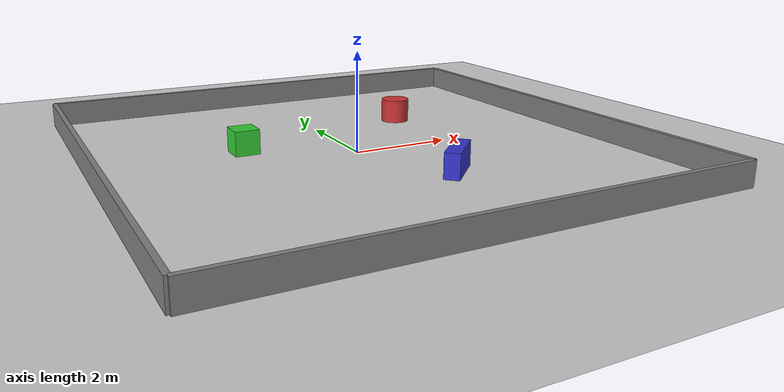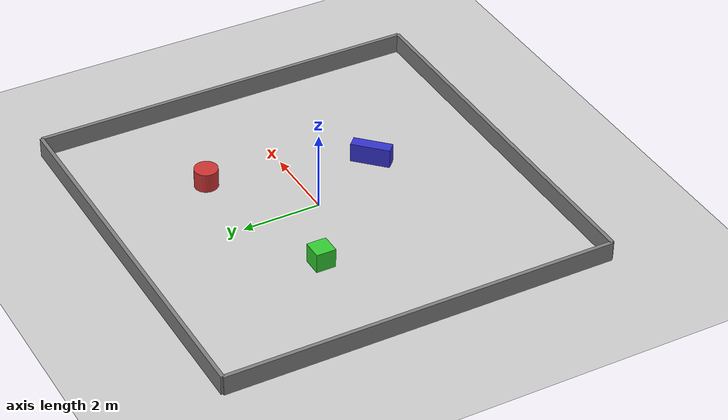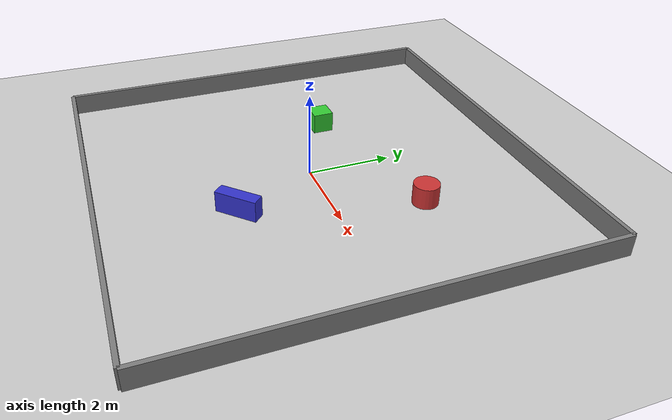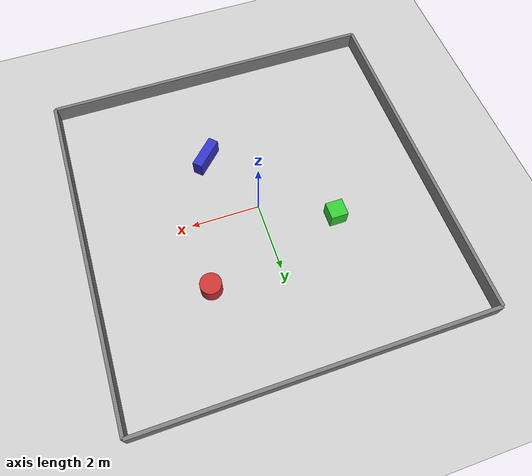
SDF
<?xml version="1.0" ?>
<sdf version="1.6">
  <world name="rover2_world">

    <!-- Physics settings -->
    <physics type="ode">
      <real_time_update_rate>1000.0</real_time_update_rate>
      <max_step_size>0.001</max_step_size>
      <real_time_factor>1</real_time_factor>
      <ode>
        <solver>
          <type>quick</type>
          <iters>150</iters>
          <precon_iters>0</precon_iters>
          <sor>1.400000</sor>
          <use_dynamic_moi_rescaling>1</use_dynamic_moi_rescaling>
        </solver>
        <constraints>
          <cfm>0.00001</cfm>
          <erp>0.2</erp>
          <contact_max_correcting_vel>2000.000000</contact_max_correcting_vel>
          <contact_surface_layer>0.01000</contact_surface_layer>
        </constraints>
      </ode>
    </physics>

    <!-- Lighting -->
    <include>
      <uri>model://sun</uri>
    </include>

    <!-- Ground plane -->
    <include>
      <uri>model://ground_plane</uri>
    </include>

    <!-- Walls to create a simple arena -->
    <model name="wall_north">
      <static>true</static>
      <pose>0 5 0.25 0 0 0</pose>
      <link name="link">
        <collision name="collision">
          <geometry>
            <box>
              <size>10 0.1 0.5</size>
            </box>
          </geometry>
        </collision>
        <visual name="visual">
          <geometry>
            <box>
              <size>10 0.1 0.5</size>
            </box>
          </geometry>
          <material>
            <ambient>0.5 0.5 0.5 1</ambient>
            <diffuse>0.5 0.5 0.5 1</diffuse>
          </material>
        </visual>
      </link>
    </model>

    <model name="wall_south">
      <static>true</static>
      <pose>0 -5 0.25 0 0 0</pose>
      <link name="link">
        <collision name="collision">
          <geometry>
            <box>
              <size>10 0.1 0.5</size>
            </box>
          </geometry>
        </collision>
        <visual name="visual">
          <geometry>
            <box>
              <size>10 0.1 0.5</size>
            </box>
          </geometry>
          <material>
            <ambient>0.5 0.5 0.5 1</ambient>
            <diffuse>0.5 0.5 0.5 1</diffuse>
          </material>
        </visual>
      </link>
    </model>

    <model name="wall_east">
      <static>true</static>
      <pose>5 0 0.25 0 0 1.5708</pose>
      <link name="link">
        <collision name="collision">
          <geometry>
            <box>
              <size>10 0.1 0.5</size>
            </box>
          </geometry>
        </collision>
        <visual name="visual">
          <geometry>
            <box>
              <size>10 0.1 0.5</size>
            </box>
          </geometry>
          <material>
            <ambient>0.5 0.5 0.5 1</ambient>
            <diffuse>0.5 0.5 0.5 1</diffuse>
          </material>
        </visual>
      </link>
    </model>

    <model name="wall_west">
      <static>true</static>
      <pose>-5 0 0.25 0 0 1.5708</pose>
      <link name="link">
        <collision name="collision">
          <geometry>
            <box>
              <size>10 0.1 0.5</size>
            </box>
          </geometry>
        </collision>
        <visual name="visual">
          <geometry>
            <box>
              <size>10 0.1 0.5</size>
            </box>
          </geometry>
          <material>
            <ambient>0.5 0.5 0.5 1</ambient>
            <diffuse>0.5 0.5 0.5 1</diffuse>
          </material>
        </visual>
      </link>
    </model>

    <!-- Obstacles for navigation testing -->
    <model name="obstacle_1">
      <static>true</static>
      <pose>2 2 0.25 0 0 0</pose>
      <link name="link">
        <collision name="collision">
          <geometry>
            <cylinder>
              <radius>0.3</radius>
              <length>0.5</length>
            </cylinder>
          </geometry>
        </collision>
        <visual name="visual">
          <geometry>
            <cylinder>
              <radius>0.3</radius>
              <length>0.5</length>
            </cylinder>
          </geometry>
          <material>
            <ambient>0.8 0.2 0.2 1</ambient>
            <diffuse>0.8 0.2 0.2 1</diffuse>
          </material>
        </visual>
      </link>
    </model>

    <model name="obstacle_2">
      <static>true</static>
      <pose>-2 1 0.25 0 0 0</pose>
      <link name="link">
        <collision name="collision">
          <geometry>
            <box>
              <size>0.5 0.5 0.5</size>
            </box>
          </geometry>
        </collision>
        <visual name="visual">
          <geometry>
            <box>
              <size>0.5 0.5 0.5</size>
            </box>
          </geometry>
          <material>
            <ambient>0.2 0.8 0.2 1</ambient>
            <diffuse>0.2 0.8 0.2 1</diffuse>
          </material>
        </visual>
      </link>
    </model>

    <model name="obstacle_3">
      <static>true</static>
      <pose>1 -2 0.25 0 0 0.785</pose>
      <link name="link">
        <collision name="collision">
          <geometry>
            <box>
              <size>1.0 0.3 0.5</size>
            </box>
          </geometry>
        </collision>
        <visual name="visual">
          <geometry>
            <box>
              <size>1.0 0.3 0.5</size>
            </box>
          </geometry>
          <material>
            <ambient>0.2 0.2 0.8 1</ambient>
            <diffuse>0.2 0.2 0.8 1</diffuse>
          </material>
        </visual>
      </link>
    </model>

  </world>
</sdf>
